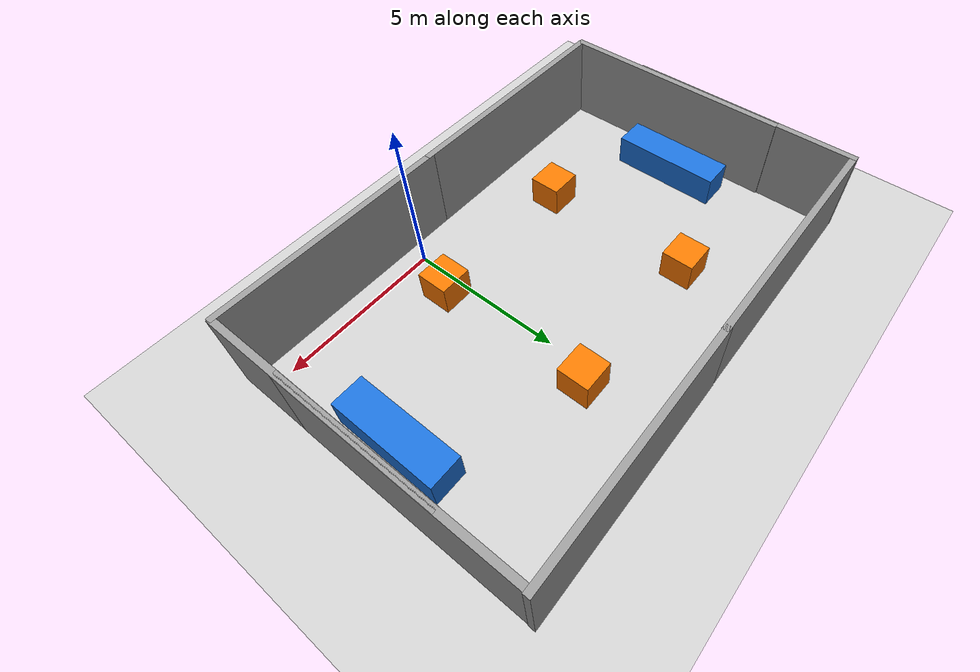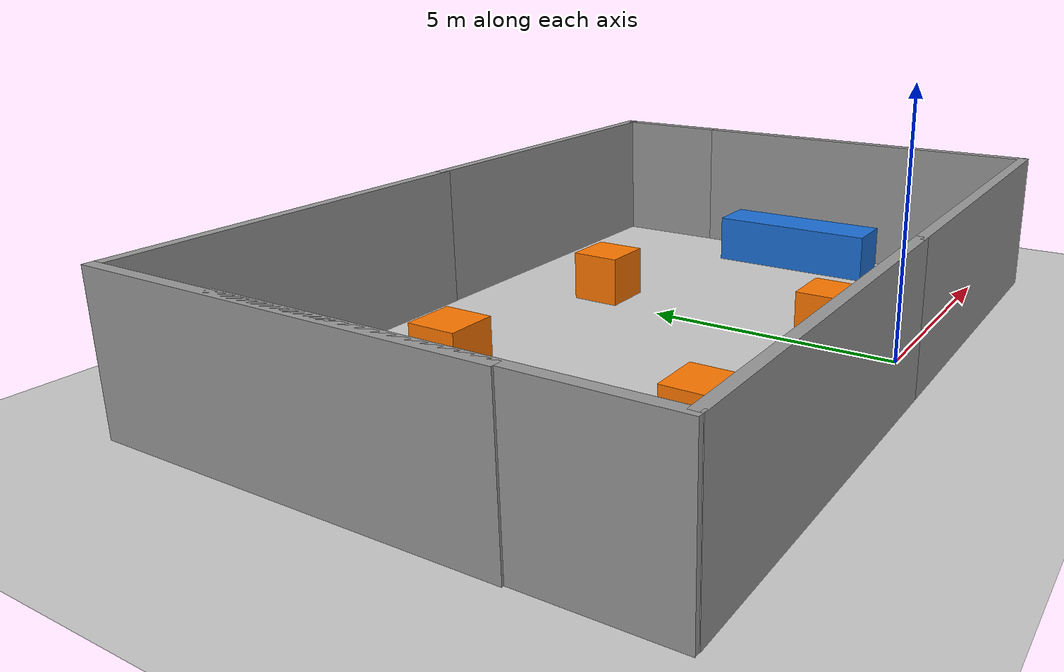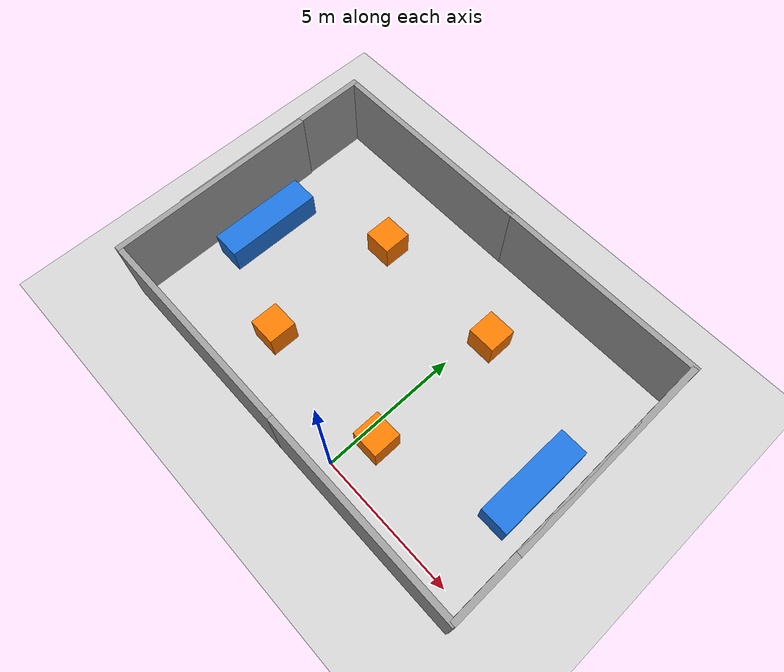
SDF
<sdf version="1.7">
 <world name="default">
  <light name="sun" type="directional">
   <pose>0 0 10 0 -0 0</pose>
   <diffuse>0.8 0.8 0.8 1</diffuse>
   <specular>0.2 0.2 0.2 1</specular>
   <attenuation>
    <range>1000</range>
    <constant>0.9</constant>
    <linear>0.01</linear>
    <quadratic>0.001</quadratic>
   </attenuation>
   <direction>-0.5 0.1 -0.9</direction>
   <spot><inner_angle>0</inner_angle><outer_angle>0</outer_angle><falloff>0</falloff></spot>
  </light>
  <model name="ground_plane">
   <static>1</static>
   <link name="link">
    <collision name="collision">
     <geometry><plane><normal>0 0 1</normal><size>100 100</size></plane></geometry>
     <surface><friction><ode><mu>100</mu><mu2>50</mu2></ode></friction></surface>
    </collision>
    <visual name="visual">
     <cast_shadows>0</cast_shadows>
     <geometry><plane><normal>0 0 1</normal><size>100 100</size></plane></geometry>
     <material>
      <script><uri>file://media/materials/scripts/gazebo.material</uri><name>Gazebo/Grey</name></script>
     </material>
    </visual>
   </link>
  </model>
  <gravity>0 0 -9.8</gravity>
  <magnetic_field>6e-06 2.3e-05 -4.2e-05</magnetic_field>
  <atmosphere type="adiabatic"/>
  <physics type="ode">
   <max_step_size>0.001</max_step_size>
   <real_time_factor>1</real_time_factor>
   <real_time_update_rate>1000</real_time_update_rate>
  </physics>
  <scene><ambient>0.4 0.4 0.4 1</ambient><background>0.7 0.7 0.7 1</background><shadows>1</shadows></scene>
  <audio><device>default</device></audio>
  <spherical_coordinates>
   <surface_model>EARTH_WGS84</surface_model>
   <latitude_deg>0</latitude_deg>
   <longitude_deg>0</longitude_deg>
   <elevation>0</elevation>
   <heading_deg>0</heading_deg>
  </spherical_coordinates>
  <model name="grey_wall">
   <static>1</static>
   <link name="link">
    <pose>0 0 1.4 0 -0 0</pose>
    <collision name="collision"><geometry><box><size>7.5 0.2 2.8</size></box></geometry></collision>
    <visual name="visual">
     <cast_shadows>0</cast_shadows>
     <geometry><box><size>7.5 0.2 2.8</size></box></geometry>
     <material>
      <script>
       <uri>model://grey_wall/materials/scripts</uri>
       <uri>model://grey_wall/materials/textures</uri>
       <name>vrc/grey_wall</name>
      </script>
     </material>
    </visual>
   </link>
   <pose>-5.22527 9.15073 0 0 -0 0</pose>
  </model>
  <model name="grey_wall_clone">
   <static>1</static>
   <link name="link">
    <pose>0 0 1.4 0 -0 0</pose>
    <collision name="collision"><geometry><box><size>7.5 0.2 2.8</size></box></geometry></collision>
    <visual name="visual">
     <cast_shadows>0</cast_shadows>
     <geometry><box><size>7.5 0.2 2.8</size></box></geometry>
     <material>
      <script>
       <uri>model://grey_wall/materials/scripts</uri>
       <uri>model://grey_wall/materials/textures</uri>
       <name>vrc/grey_wall</name>
      </script>
     </material>
    </visual>
   </link>
   <pose>2.09203 9.16116 0 0 -0 0</pose>
  </model>
  <model name="grey_wall_clone_0">
   <static>1</static>
   <link name="link">
    <pose>0 0 1.4 0 -0 0</pose>
    <collision name="collision"><geometry><box><size>7.5 0.2 2.8</size></box></geometry></collision>
    <visual name="visual">
     <cast_shadows>0</cast_shadows>
     <geometry><box><size>7.5 0.2 2.8</size></box></geometry>
     <material>
      <script>
       <uri>model://grey_wall/materials/scripts</uri>
       <uri>model://grey_wall/materials/textures</uri>
       <name>vrc/grey_wall</name>
      </script>
     </material>
    </visual>
   </link>
   <pose>-9.02983 5.49936 0 0 -0 1.58052</pose>
  </model>
  <model name="grey_wall_clone_0_clone">
   <static>1</static>
   <link name="link">
    <pose>0 0 1.4 0 -0 0</pose>
    <collision name="collision"><geometry><box><size>7.5 0.2 2.8</size></box></geometry></collision>
    <visual name="visual">
     <cast_shadows>0</cast_shadows>
     <geometry><box><size>7.5 0.2 2.8</size></box></geometry>
     <material>
      <script>
       <uri>model://grey_wall/materials/scripts</uri>
       <uri>model://grey_wall/materials/textures</uri>
       <name>vrc/grey_wall</name>
      </script>
     </material>
    </visual>
   </link>
   <pose>-8.96622 2.95449 0 0 -0 1.58052</pose>
  </model>
  <model name="grey_wall_clone_1">
   <static>1</static>
   <link name="link">
    <pose>0 0 1.4 0 -0 0</pose>
    <collision name="collision"><geometry><box><size>7.5 0.2 2.8</size></box></geometry></collision>
    <visual name="visual">
     <cast_shadows>0</cast_shadows>
     <geometry><box><size>7.5 0.2 2.8</size></box></geometry>
     <material>
      <script>
       <uri>model://grey_wall/materials/scripts</uri>
       <uri>model://grey_wall/materials/textures</uri>
       <name>vrc/grey_wall</name>
      </script>
     </material>
    </visual>
   </link>
   <pose>-5.18597 -0.706797 0 0 -0 0</pose>
  </model>
  <model name="grey_wall_clone_2">
   <static>1</static>
   <link name="link">
    <pose>0 0 1.4 0 -0 0</pose>
    <collision name="collision"><geometry><box><size>7.5 0.2 2.8</size></box></geometry></collision>
    <visual name="visual">
     <cast_shadows>0</cast_shadows>
     <geometry><box><size>7.5 0.2 2.8</size></box></geometry>
     <material>
      <script>
       <uri>model://grey_wall/materials/scripts</uri>
       <uri>model://grey_wall/materials/textures</uri>
       <name>vrc/grey_wall</name>
      </script>
     </material>
    </visual>
   </link>
   <pose>2.13099 -0.706051 0 0 -0 0</pose>
  </model>
  <model name="grey_wall_clone_0_clone_clone">
   <static>1</static>
   <link name="link">
    <pose>0 0 1.4 0 -0 0</pose>
    <collision name="collision"><geometry><box><size>7.5 0.2 2.8</size></box></geometry></collision>
    <visual name="visual">
     <cast_shadows>0</cast_shadows>
     <geometry><box><size>7.5 0.2 2.8</size></box></geometry>
     <material>
      <script>
       <uri>model://grey_wall/materials/scripts</uri>
       <uri>model://grey_wall/materials/textures</uri>
       <name>vrc/grey_wall</name>
      </script>
     </material>
    </visual>
   </link>
   <pose>5.77499 3.00644 0 0 -0 1.58052</pose>
  </model>
  <model name="grey_wall_clone_0_clone_clone_0">
   <static>1</static>
   <link name="link">
    <pose>0 0 1.4 0 -0 0</pose>
    <collision name="collision"><geometry><box><size>7.5 0.2 2.8</size></box></geometry></collision>
    <visual name="visual">
     <cast_shadows>0</cast_shadows>
     <geometry><box><size>7.5 0.2 2.8</size></box></geometry>
     <material>
      <script>
       <uri>model://grey_wall/materials/scripts</uri>
       <uri>model://grey_wall/materials/textures</uri>
       <name>vrc/grey_wall</name>
      </script>
     </material>
    </visual>
   </link>
   <pose>5.758 5.42643 0 0 -0 1.58052</pose>
  </model>
  <model name="unit_box_0">
   <link name="link">
    <inertial>
     <mass>1</mass>
     <inertia>
      <ixx>0.166667</ixx>
      <ixy>0</ixy>
      <ixz>0</ixz>
      <iyy>0.166667</iyy>
      <iyz>0</iyz>
      <izz>0.166667</izz>
     </inertia>
    </inertial>
    <visual name="visual">
     <geometry><box><size>1 1 1</size></box></geometry>
     <material>
      <script><name>Gazebo/Grey</name><uri>file://media/materials/scripts/gazebo.material</uri></script>
      <shader type="pixel"><normal_map>__default__</normal_map></shader>
      <ambient>1 0.471 0 1</ambient>
      <diffuse>0.7 0.7 0.7 1</diffuse>
      <specular>0.01 0.01 0.01 1</specular>
      <emissive>0 0 0 1</emissive>
     </material>
    </visual>
    <collision name="collision">
     <geometry><box><size>1 1 1</size></box></geometry>
     <surface>
      <friction>
       <ode><mu>1</mu><mu2>1</mu2><fdir1>0 0 0</fdir1><slip1>0</slip1><slip2>0</slip2></ode>
       <torsional>
        <coefficient>1</coefficient>
        <patch_radius>0</patch_radius>
        <surface_radius>0</surface_radius>
        <use_patch_radius>1</use_patch_radius>
        <ode><slip>0</slip></ode>
       </torsional>
      </friction>
      <bounce><restitution_coefficient>0</restitution_coefficient><threshold>1e+06</threshold></bounce>
      <contact>
       <collide_without_contact>0</collide_without_contact>
       <collide_without_contact_bitmask>1</collide_without_contact_bitmask>
       <collide_bitmask>1</collide_bitmask>
       <ode>
        <soft_cfm>0</soft_cfm>
        <soft_erp>0.2</soft_erp>
        <kp>1e+13</kp>
        <kd>1</kd>
        <max_vel>0.01</max_vel>
        <min_depth>0</min_depth>
       </ode>
       <bullet>
        <split_impulse>1</split_impulse>
        <split_impulse_penetration_threshold>-0.01</split_impulse_penetration_threshold>
        <soft_cfm>0</soft_cfm>
        <soft_erp>0.2</soft_erp>
        <kp>1e+13</kp>
        <kd>1</kd>
       </bullet>
      </contact>
     </surface>
    </collision>
   </link>
   <static>0</static>
   <pose>-4.48622 6.53364 0.5 0 -0 0</pose>
  </model>
  <model name="unit_box_0_clone">
   <link name="link">
    <inertial>
     <mass>1</mass>
     <inertia>
      <ixx>0.166667</ixx>
      <ixy>0</ixy>
      <ixz>0</ixz>
      <iyy>0.166667</iyy>
      <iyz>0</iyz>
      <izz>0.166667</izz>
     </inertia>
    </inertial>
    <visual name="visual">
     <geometry><box><size>1 1 1</size></box></geometry>
     <material>
      <script><name>Gazebo/Grey</name><uri>file://media/materials/scripts/gazebo.material</uri></script>
      <shader type="pixel"><normal_map>__default__</normal_map></shader>
      <ambient>1 0.471 0 1</ambient>
      <diffuse>0.7 0.7 0.7 1</diffuse>
      <specular>0.01 0.01 0.01 1</specular>
      <emissive>0 0 0 1</emissive>
     </material>
    </visual>
    <collision name="collision">
     <geometry><box><size>1 1 1</size></box></geometry>
     <surface>
      <friction>
       <ode><mu>1</mu><mu2>1</mu2><fdir1>0 0 0</fdir1><slip1>0</slip1><slip2>0</slip2></ode>
       <torsional>
        <coefficient>1</coefficient>
        <patch_radius>0</patch_radius>
        <surface_radius>0</surface_radius>
        <use_patch_radius>1</use_patch_radius>
        <ode><slip>0</slip></ode>
       </torsional>
      </friction>
      <bounce><restitution_coefficient>0</restitution_coefficient><threshold>1e+06</threshold></bounce>
      <contact>
       <collide_without_contact>0</collide_without_contact>
       <collide_without_contact_bitmask>1</collide_without_contact_bitmask>
       <collide_bitmask>1</collide_bitmask>
       <ode>
        <soft_cfm>0</soft_cfm>
        <soft_erp>0.2</soft_erp>
        <kp>1e+13</kp>
        <kd>1</kd>
        <max_vel>0.01</max_vel>
        <min_depth>0</min_depth>
       </ode>
       <bullet>
        <split_impulse>1</split_impulse>
        <split_impulse_penetration_threshold>-0.01</split_impulse_penetration_threshold>
        <soft_cfm>0</soft_cfm>
        <soft_erp>0.2</soft_erp>
        <kp>1e+13</kp>
        <kd>1</kd>
       </bullet>
      </contact>
     </surface>
    </collision>
   </link>
   <static>0</static>
   <pose>0.482992 6.50388 0.5 0 -0 0</pose>
  </model>
  <model name="unit_box_0_clone_0">
   <link name="link">
    <inertial>
     <mass>1</mass>
     <inertia>
      <ixx>0.166667</ixx>
      <ixy>0</ixy>
      <ixz>0</ixz>
      <iyy>0.166667</iyy>
      <iyz>0</iyz>
      <izz>0.166667</izz>
     </inertia>
    </inertial>
    <visual name="visual">
     <geometry><box><size>1 1 1</size></box></geometry>
     <material>
      <script><name>Gazebo/Grey</name><uri>file://media/materials/scripts/gazebo.material</uri></script>
      <shader type="pixel"><normal_map>__default__</normal_map></shader>
      <ambient>1 0.471 0 1</ambient>
      <diffuse>0.7 0.7 0.7 1</diffuse>
      <specular>0.01 0.01 0.01 1</specular>
      <emissive>0 0 0 1</emissive>
     </material>
    </visual>
    <collision name="collision">
     <geometry><box><size>1 1 1</size></box></geometry>
     <surface>
      <friction>
       <ode><mu>1</mu><mu2>1</mu2><fdir1>0 0 0</fdir1><slip1>0</slip1><slip2>0</slip2></ode>
       <torsional>
        <coefficient>1</coefficient>
        <patch_radius>0</patch_radius>
        <surface_radius>0</surface_radius>
        <use_patch_radius>1</use_patch_radius>
        <ode><slip>0</slip></ode>
       </torsional>
      </friction>
      <bounce><restitution_coefficient>0</restitution_coefficient><threshold>1e+06</threshold></bounce>
      <contact>
       <collide_without_contact>0</collide_without_contact>
       <collide_without_contact_bitmask>1</collide_without_contact_bitmask>
       <collide_bitmask>1</collide_bitmask>
       <ode>
        <soft_cfm>0</soft_cfm>
        <soft_erp>0.2</soft_erp>
        <kp>1e+13</kp>
        <kd>1</kd>
        <max_vel>0.01</max_vel>
        <min_depth>0</min_depth>
       </ode>
       <bullet>
        <split_impulse>1</split_impulse>
        <split_impulse_penetration_threshold>-0.01</split_impulse_penetration_threshold>
        <soft_cfm>0</soft_cfm>
        <soft_erp>0.2</soft_erp>
        <kp>1e+13</kp>
        <kd>1</kd>
       </bullet>
      </contact>
     </surface>
    </collision>
   </link>
   <static>0</static>
   <pose>-4.51978 1.53972 0.5 0 -0 0</pose>
  </model>
  <model name="unit_box_0_clone_1">
   <link name="link">
    <inertial>
     <mass>1</mass>
     <inertia>
      <ixx>0.166667</ixx>
      <ixy>0</ixy>
      <ixz>0</ixz>
      <iyy>0.166667</iyy>
      <iyz>0</iyz>
      <izz>0.166667</izz>
     </inertia>
    </inertial>
    <visual name="visual">
     <geometry><box><size>1 1 1</size></box></geometry>
     <material>
      <script><name>Gazebo/Grey</name><uri>file://media/materials/scripts/gazebo.material</uri></script>
      <shader type="pixel"><normal_map>__default__</normal_map></shader>
      <ambient>1 0.471 0 1</ambient>
      <diffuse>0.7 0.7 0.7 1</diffuse>
      <specular>0.01 0.01 0.01 1</specular>
      <emissive>0 0 0 1</emissive>
     </material>
    </visual>
    <collision name="collision">
     <geometry><box><size>1 1 1</size></box></geometry>
     <surface>
      <friction>
       <ode><mu>1</mu><mu2>1</mu2><fdir1>0 0 0</fdir1><slip1>0</slip1><slip2>0</slip2></ode>
       <torsional>
        <coefficient>1</coefficient>
        <patch_radius>0</patch_radius>
        <surface_radius>0</surface_radius>
        <use_patch_radius>1</use_patch_radius>
        <ode><slip>0</slip></ode>
       </torsional>
      </friction>
      <bounce><restitution_coefficient>0</restitution_coefficient><threshold>1e+06</threshold></bounce>
      <contact>
       <collide_without_contact>0</collide_without_contact>
       <collide_without_contact_bitmask>1</collide_without_contact_bitmask>
       <collide_bitmask>1</collide_bitmask>
       <ode>
        <soft_cfm>0</soft_cfm>
        <soft_erp>0.2</soft_erp>
        <kp>1e+13</kp>
        <kd>1</kd>
        <max_vel>0.01</max_vel>
        <min_depth>0</min_depth>
       </ode>
       <bullet>
        <split_impulse>1</split_impulse>
        <split_impulse_penetration_threshold>-0.01</split_impulse_penetration_threshold>
        <soft_cfm>0</soft_cfm>
        <soft_erp>0.2</soft_erp>
        <kp>1e+13</kp>
        <kd>1</kd>
       </bullet>
      </contact>
     </surface>
    </collision>
   </link>
   <static>0</static>
   <pose>0.497635 1.48972 0.5 0 -0 0</pose>
  </model>
  <model name="unit_box_clone">
   <link name="link">
    <inertial>
     <mass>1</mass>
     <inertia>
      <ixx>0.166667</ixx>
      <ixy>0</ixy>
      <ixz>0</ixz>
      <iyy>0.166667</iyy>
      <iyz>0</iyz>
      <izz>0.166667</izz>
     </inertia>
    </inertial>
    <visual name="visual">
     <geometry><box><size>1 3.48173 1</size></box></geometry>
     <material>
      <script><name>Gazebo/Grey</name><uri>file://media/materials/scripts/gazebo.material</uri></script>
      <shader type="pixel"><normal_map>__default__</normal_map></shader>
      <ambient>0.11 0.443 0.847 1</ambient>
      <diffuse>0.7 0.7 0.7 1</diffuse>
      <specular>0.01 0.01 0.01 1</specular>
      <emissive>0 0 0 1</emissive>
     </material>
    </visual>
    <collision name="collision">
     <geometry><box><size>1 3.48173 1</size></box></geometry>
     <surface>
      <friction>
       <ode><mu>1</mu><mu2>1</mu2><fdir1>0 0 0</fdir1><slip1>0</slip1><slip2>0</slip2></ode>
       <torsional>
        <coefficient>1</coefficient>
        <patch_radius>0</patch_radius>
        <surface_radius>0</surface_radius>
        <use_patch_radius>1</use_patch_radius>
        <ode><slip>0</slip></ode>
       </torsional>
      </friction>
      <bounce><restitution_coefficient>0</restitution_coefficient><threshold>1e+06</threshold></bounce>
      <contact>
       <collide_without_contact>0</collide_without_contact>
       <collide_without_contact_bitmask>1</collide_without_contact_bitmask>
       <collide_bitmask>1</collide_bitmask>
       <ode>
        <soft_cfm>0</soft_cfm>
        <soft_erp>0.2</soft_erp>
        <kp>1e+13</kp>
        <kd>1</kd>
        <max_vel>0.01</max_vel>
        <min_depth>0</min_depth>
       </ode>
       <bullet>
        <split_impulse>1</split_impulse>
        <split_impulse_penetration_threshold>-0.01</split_impulse_penetration_threshold>
        <soft_cfm>0</soft_cfm>
        <soft_erp>0.2</soft_erp>
        <kp>1e+13</kp>
        <kd>1</kd>
       </bullet>
      </contact>
     </surface>
    </collision>
   </link>
   <static>0</static>
   <pose>-7.91007 3.91516 0.5 0 -0 0</pose>
  </model>
  <model name="unit_box_clone_clone">
   <link name="link">
    <inertial>
     <mass>1</mass>
     <inertia>
      <ixx>0.166667</ixx>
      <ixy>0</ixy>
      <ixz>0</ixz>
      <iyy>0.166667</iyy>
      <iyz>0</iyz>
      <izz>0.166667</izz>
     </inertia>
    </inertial>
    <visual name="visual">
     <geometry><box><size>1 3.48173 1</size></box></geometry>
     <material>
      <script><name>Gazebo/Grey</name><uri>file://media/materials/scripts/gazebo.material</uri></script>
      <shader type="pixel"><normal_map>__default__</normal_map></shader>
      <ambient>0.11 0.443 0.847 1</ambient>
      <diffuse>0.7 0.7 0.7 1</diffuse>
      <specular>0.01 0.01 0.01 1</specular>
      <emissive>0 0 0 1</emissive>
     </material>
    </visual>
    <collision name="collision">
     <geometry><box><size>1 3.48173 1</size></box></geometry>
     <surface>
      <friction>
       <ode><mu>1</mu><mu2>1</mu2><fdir1>0 0 0</fdir1><slip1>0</slip1><slip2>0</slip2></ode>
       <torsional>
        <coefficient>1</coefficient>
        <patch_radius>0</patch_radius>
        <surface_radius>0</surface_radius>
        <use_patch_radius>1</use_patch_radius>
        <ode><slip>0</slip></ode>
       </torsional>
      </friction>
      <bounce><restitution_coefficient>0</restitution_coefficient><threshold>1e+06</threshold></bounce>
      <contact>
       <collide_without_contact>0</collide_without_contact>
       <collide_without_contact_bitmask>1</collide_without_contact_bitmask>
       <collide_bitmask>1</collide_bitmask>
       <ode>
        <soft_cfm>0</soft_cfm>
        <soft_erp>0.2</soft_erp>
        <kp>1e+13</kp>
        <kd>1</kd>
        <max_vel>0.01</max_vel>
        <min_depth>0</min_depth>
       </ode>
       <bullet>
        <split_impulse>1</split_impulse>
        <split_impulse_penetration_threshold>-0.01</split_impulse_penetration_threshold>
        <soft_cfm>0</soft_cfm>
        <soft_erp>0.2</soft_erp>
        <kp>1e+13</kp>
        <kd>1</kd>
       </bullet>
      </contact>
     </surface>
    </collision>
   </link>
   <static>0</static>
   <pose>4.69057 3.943 0.5 0 -0 0</pose>
  </model>
 </world>
</sdf>
